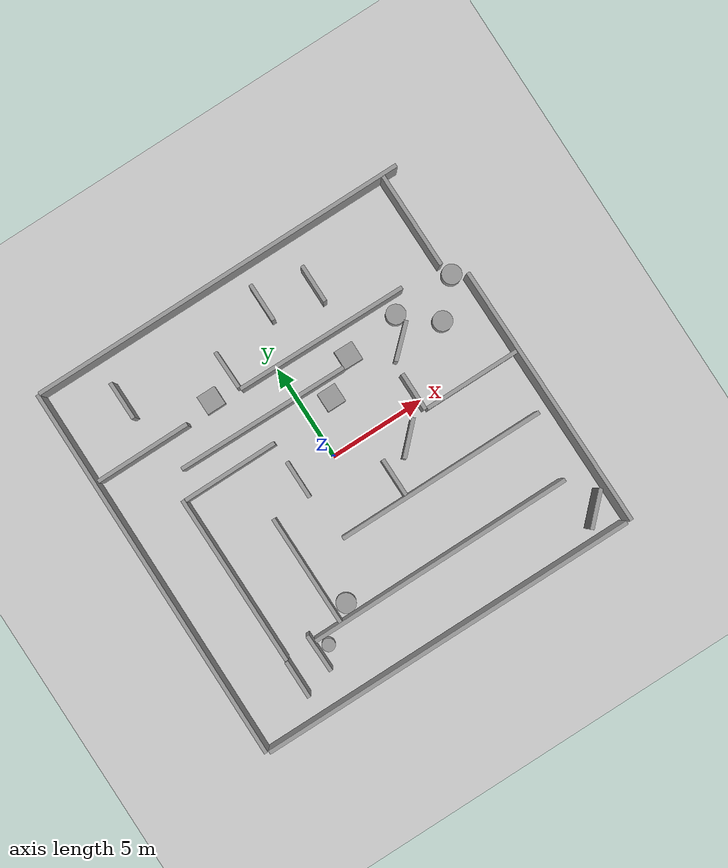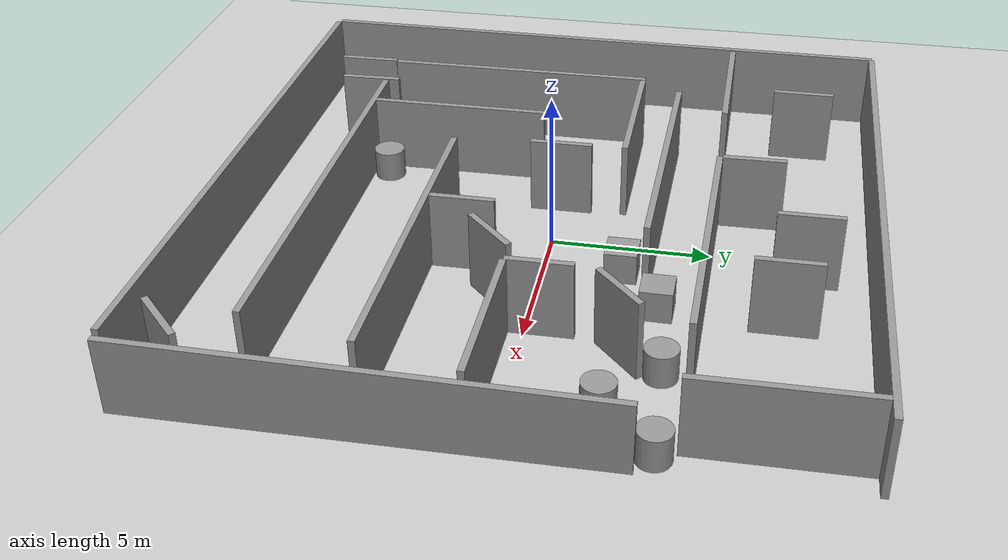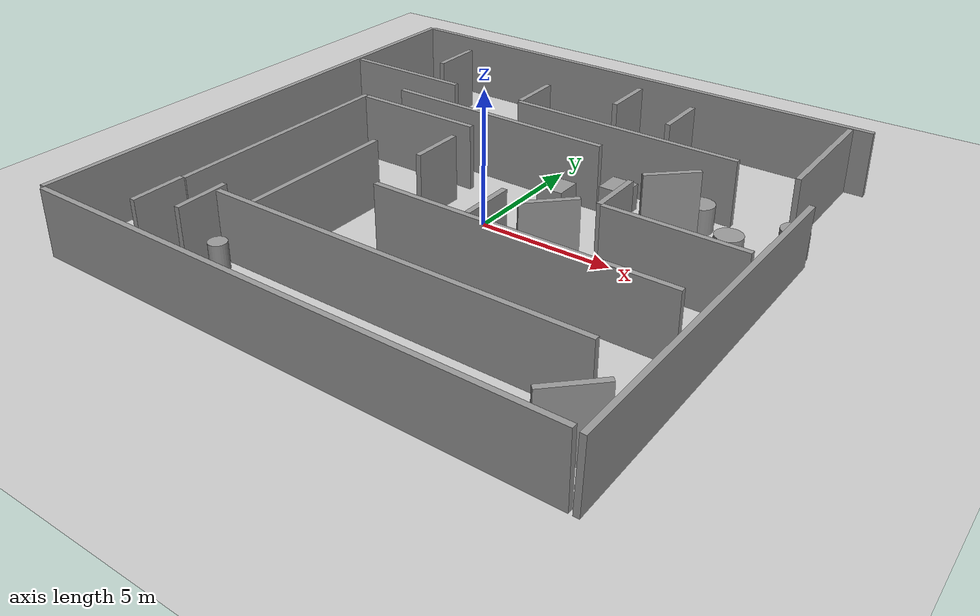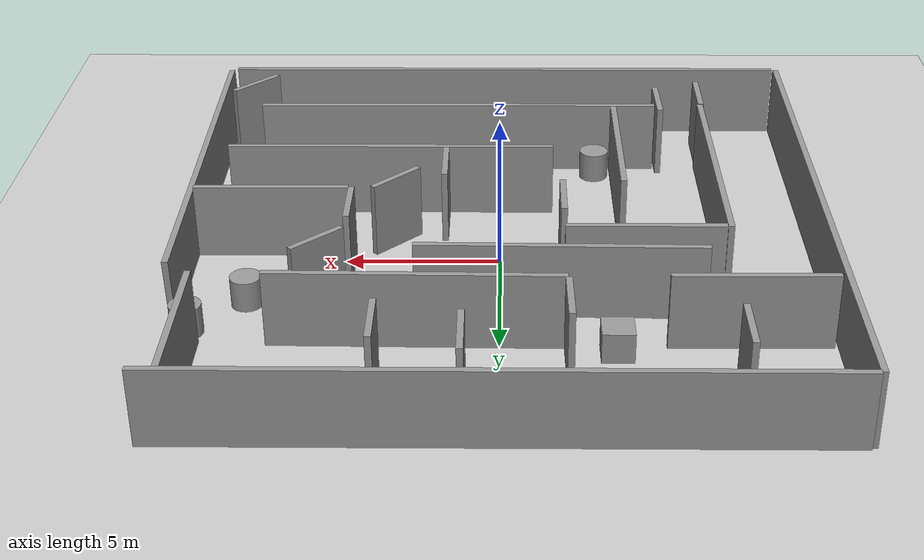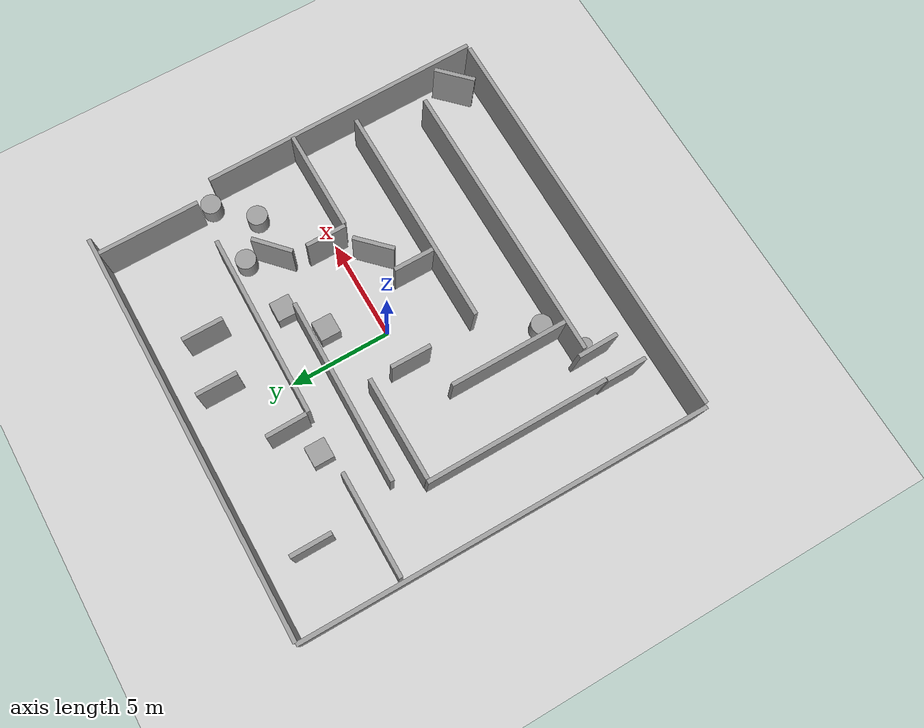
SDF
<sdf version="1.6">
 <world name="maze">
  <physics name="default_physics" default="0" type="ode">
   <ode>
    <solver>
     <type>quick</type>
     <iters>50</iters>
     <sor>1.4</sor>
     <use_dynamic_moi_rescaling>0</use_dynamic_moi_rescaling>
    </solver>
    <constraints>
     <cfm>0</cfm>
     <erp>0.2</erp>
     <contact_max_correcting_vel>100</contact_max_correcting_vel>
     <contact_surface_layer>0</contact_surface_layer>
    </constraints>
   </ode>
   <real_time_update_rate>1000</real_time_update_rate>
   <max_step_size>0.001</max_step_size>
   <real_time_factor>1</real_time_factor>
  </physics>
  <scene><ambient>0.3 0.3 0.3 1</ambient><background>0.7 0.7 0.7 1</background><shadows>1</shadows></scene>
  <light name="sun" type="directional">
   <pose>0 0 100 0 -0 0</pose>
   <diffuse>0.9 0.9 0.9 1</diffuse>
   <specular>0.1 0.1 0.1 1</specular>
   <attenuation>
    <range>1000</range>
    <constant>0.9</constant>
    <linear>0.01</linear>
    <quadratic>0.001</quadratic>
   </attenuation>
   <direction>-0.2 0 -1</direction>
  </light>
  <light name="light_bulb" type="point">
   <cast_shadows>0</cast_shadows>
   <pose>0 0 10 0 -0 0</pose>
   <diffuse>0.5 0.5 0.5 1</diffuse>
   <specular>0 0 0 1</specular>
   <attenuation>
    <range>80</range>
    <constant>0.9</constant>
    <linear>0.01</linear>
    <quadratic>0.001</quadratic>
   </attenuation>
   <direction>0 0 -1</direction>
  </light>
  <model name="ground_plane">
   <static>1</static>
   <link name="link">
    <collision name="collision">
     <geometry><plane><normal>0 0 1</normal><size>100 100</size></plane></geometry>
     <surface><friction><ode><mu>100</mu><mu2>50</mu2></ode></friction></surface>
    </collision>
    <visual name="visual">
     <cast_shadows>0</cast_shadows>
     <geometry><plane><normal>0 0 1</normal><size>100 100</size></plane></geometry>
     <material>
      <script><uri>file://media/materials/scripts/gazebo.material</uri><name>Gazebo/Grey</name></script>
     </material>
    </visual>
   </link>
  </model>
  <model name="Wall_0">
   <pose>-0.218607 -0.058907 1e-05 0 -1e-06 -0.00463</pose>
   <static>1</static>
   <link name="link_Wall_0">
    <pose>-10 -10 0 0 -0 1.5708</pose>
    <collision name="Wall_0_Collision">
     <pose>10 0 1.25 0 -0 0</pose>
     <geometry><box><size>20 0.2 2.5</size></box></geometry>
    </collision>
    <visual name="Wall_0_Visual">
     <pose>10 0 1.25 0 -0 0</pose>
     <geometry><box><size>20 0.2 2.5</size></box></geometry>
     <material>
      <script><uri>file://media/materials/scripts/gazebo.material</uri><name>Gazebo/Grey</name></script>
     </material>
    </visual>
    <inertial>
     <inertia><ixx>1</ixx><ixy>0</ixy><ixz>0</ixz><iyy>1</iyy><iyz>0</iyz><izz>1</izz></inertia>
     <mass>1</mass>
    </inertial>
   </link>
  </model>
  <model name="Wall_1">
   <pose>-0.104222 -0.104441 0.00011 0 -1.2e-05 -0.002511</pose>
   <static>1</static>
   <link name="link_Wall_1">
    <pose>-10 -10 0 0 -0 0</pose>
    <collision name="Wall_1_Collision">
     <pose>10 0 1.25 0 -0 0</pose>
     <geometry><box><size>20 0.2 2.5</size></box></geometry>
    </collision>
    <visual name="Wall_1_Visual">
     <pose>10 0 1.25 0 -0 0</pose>
     <geometry><box><size>20 0.2 2.5</size></box></geometry>
     <material>
      <script><uri>file://media/materials/scripts/gazebo.material</uri><name>Gazebo/Grey</name></script>
     </material>
    </visual>
    <inertial>
     <inertia><ixx>1</ixx><ixy>0</ixy><ixz>0</ixz><iyy>1</iyy><iyz>0</iyz><izz>1</izz></inertia>
     <mass>1</mass>
    </inertial>
   </link>
  </model>
  <model name="Wall_3">
   <pose>-0.12902 -0.058534 0.016871 2.9e-05 -0.00169 -0.003345</pose>
   <static>1</static>
   <link name="link_Wall_3">
    <pose>-10 10 0 0 -0 0</pose>
    <collision name="Wall_3_Collision">
     <pose>10 0 1.25 0 -0 0</pose>
     <geometry><box><size>20 0.2 2.5</size></box></geometry>
    </collision>
    <visual name="Wall_3_Visual">
     <pose>10 0 1.25 0 -0 0</pose>
     <geometry><box><size>20 0.2 2.5</size></box></geometry>
     <material>
      <script><uri>file://media/materials/scripts/gazebo.material</uri><name>Gazebo/Grey</name></script>
     </material>
    </visual>
    <inertial>
     <inertia><ixx>1</ixx><ixy>0</ixy><ixz>0</ixz><iyy>1</iyy><iyz>0</iyz><izz>1</izz></inertia>
     <mass>1</mass>
    </inertial>
   </link>
  </model>
  <model name="Wall_4">
   <pose>-1.48009 0.13557 8.4e-05 -1e-06 -2.3e-05 -0.000265</pose>
   <static>1</static>
   <link name="link_Wall_4">
    <pose>-4 -7 0 0 -0 0</pose>
    <collision name="Wall_4_Collision">
     <pose>7 0 1.25 0 -0 0</pose>
     <geometry><box><size>14 0.2 2.5</size></box></geometry>
    </collision>
    <visual name="Wall_4_Visual">
     <pose>7 0 1.25 0 -0 0</pose>
     <geometry><box><size>14 0.2 2.5</size></box></geometry>
     <material>
      <script><uri>file://media/materials/scripts/gazebo.material</uri><name>Gazebo/Grey</name></script>
     </material>
    </visual>
    <inertial>
     <inertia><ixx>1</ixx><ixy>0</ixy><ixz>0</ixz><iyy>1</iyy><iyz>0</iyz><izz>1</izz></inertia>
     <mass>1</mass>
    </inertial>
   </link>
  </model>
  <model name="Wall_5">
   <pose>-0.126591 0.121857 0.00566 0.00081 1.3e-05 0.00342</pose>
   <static>1</static>
   <link name="link_Wall_5">
    <pose>-7 -7 0 0 -0 1.5708</pose>
    <collision name="Wall_5_Collision">
     <pose>4.5 0 1.25 0 -0 0</pose>
     <geometry><box><size>9 0.2 2.5</size></box></geometry>
    </collision>
    <visual name="Wall_5_Visual">
     <pose>4.5 0 1.25 0 -0 0</pose>
     <geometry><box><size>9 0.2 2.5</size></box></geometry>
     <material>
      <script><uri>file://media/materials/scripts/gazebo.material</uri><name>Gazebo/Grey</name></script>
     </material>
    </visual>
    <inertial>
     <inertia><ixx>1</ixx><ixy>0</ixy><ixz>0</ixz><iyy>1</iyy><iyz>0</iyz><izz>1</izz></inertia>
     <mass>1</mass>
    </inertial>
   </link>
  </model>
  <model name="Wall_6">
   <pose>-0.769612 0.488747 0.000843 -1e-06 -0.000847 -0.001955</pose>
   <static>1</static>
   <link name="link_Wall_6">
    <pose>-1 -4 0 0 -0 0</pose>
    <collision name="Wall_6_Collision">
     <pose>5.5 0 1.25 0 -0 0</pose>
     <geometry><box><size>11 0.2 2.5</size></box></geometry>
    </collision>
    <visual name="Wall_6_Visual">
     <pose>5.5 0 1.25 0 -0 0</pose>
     <geometry><box><size>11 0.2 2.5</size></box></geometry>
     <material>
      <script><uri>file://media/materials/scripts/gazebo.material</uri><name>Gazebo/Grey</name></script>
     </material>
    </visual>
    <inertial>
     <inertia><ixx>1</ixx><ixy>0</ixy><ixz>0</ixz><iyy>1</iyy><iyz>0</iyz><izz>1</izz></inertia>
     <mass>1</mass>
    </inertial>
   </link>
  </model>
  <model name="Wall_7">
   <pose>-0.022562 0.060278 4e-06 0 -1e-06 0.00249</pose>
   <static>1</static>
   <link name="link_Wall_7">
    <pose>-4 -7 0 0 -0 1.5708</pose>
    <collision name="Wall_7_Collision">
     <pose>3 0 1.25 0 -0 0</pose>
     <geometry><box><size>6 0.2 2.5</size></box></geometry>
    </collision>
    <visual name="Wall_7_Visual">
     <pose>3 0 1.25 0 -0 0</pose>
     <geometry><box><size>6 0.2 2.5</size></box></geometry>
     <material>
      <script><uri>file://media/materials/scripts/gazebo.material</uri><name>Gazebo/Grey</name></script>
     </material>
    </visual>
    <inertial>
     <inertia><ixx>1</ixx><ixy>0</ixy><ixz>0</ixz><iyy>1</iyy><iyz>0</iyz><izz>1</izz></inertia>
     <mass>1</mass>
    </inertial>
   </link>
  </model>
  <model name="Wall_9">
   <pose>-0.063693 0.004472 0.005677 1e-06 -0.002841 -0.012727</pose>
   <static>1</static>
   <link name="link_Wall_9">
    <pose>-2 5 0 0 -0 0</pose>
    <collision name="Wall_9_Collision">
     <pose>4.5 0 1.25 0 -0 0</pose>
     <geometry><box><size>9 0.2 2.5</size></box></geometry>
    </collision>
    <visual name="Wall_9_Visual">
     <pose>4.5 0 1.25 0 -0 0</pose>
     <geometry><box><size>9 0.2 2.5</size></box></geometry>
     <material>
      <script><uri>file://media/materials/scripts/gazebo.material</uri><name>Gazebo/Grey</name></script>
     </material>
    </visual>
    <inertial>
     <inertia><ixx>1</ixx><ixy>0</ixy><ixz>0</ixz><iyy>1</iyy><iyz>0</iyz><izz>1</izz></inertia>
     <mass>1</mass>
    </inertial>
   </link>
  </model>
  <model name="Wall_10">
   <pose>0.050082 0.159952 -7e-05 1.4e-05 -0 0.01501</pose>
   <static>1</static>
   <link name="link_Wall_10">
    <pose>-2 5 0 0 -0 1.5708</pose>
    <collision name="Wall_10_Collision">
     <pose>1 0 1.25 0 -0 0</pose>
     <geometry><box><size>2 0.2 2.5</size></box></geometry>
    </collision>
    <visual name="Wall_10_Visual">
     <pose>1 0 1.25 0 -0 0</pose>
     <geometry><box><size>2 0.2 2.5</size></box></geometry>
     <material>
      <script><uri>file://media/materials/scripts/gazebo.material</uri><name>Gazebo/Grey</name></script>
     </material>
    </visual>
    <inertial>
     <inertia><ixx>1</ixx><ixy>0</ixy><ixz>0</ixz><iyy>1</iyy><iyz>0</iyz><izz>1</izz></inertia>
     <mass>1</mass>
    </inertial>
   </link>
  </model>
  <model name="Wall_11">
   <pose>-0.40704 -1.66392 -0.00158 0.000197 -1e-06 3e-05</pose>
   <static>1</static>
   <link name="link_Wall_11">
    <pose>4 8 0 0 -0 1.5708</pose>
    <collision name="Wall_11_Collision">
     <pose>1 0 1.25 0 -0 0</pose>
     <geometry><box><size>2 0.2 2.5</size></box></geometry>
    </collision>
    <visual name="Wall_11_Visual">
     <pose>1 0 1.25 0 -0 0</pose>
     <geometry><box><size>2 0.2 2.5</size></box></geometry>
     <material>
      <script><uri>file://media/materials/scripts/gazebo.material</uri><name>Gazebo/Grey</name></script>
     </material>
    </visual>
    <inertial>
     <inertia><ixx>1</ixx><ixy>0</ixy><ixz>0</ixz><iyy>1</iyy><iyz>0</iyz><izz>1</izz></inertia>
     <mass>1</mass>
    </inertial>
   </link>
  </model>
  <model name="Wall_12">
   <pose>2.13225 2.77812 -0.002935 0.001446 -6e-06 0.00611</pose>
   <static>1</static>
   <link name="link_Wall_12">
    <pose>7 2 0 0 -0 1.5708</pose>
    <collision name="Wall_12_Collision">
     <pose>2.5 0 1.25 0 -0 0</pose>
     <geometry><box><size>5 0.2 2.5</size></box></geometry>
    </collision>
    <visual name="Wall_12_Visual">
     <pose>2.5 0 1.25 0 -0 0</pose>
     <geometry><box><size>5 0.2 2.5</size></box></geometry>
     <material>
      <script><uri>file://media/materials/scripts/gazebo.material</uri><name>Gazebo/Grey</name></script>
     </material>
    </visual>
    <inertial>
     <inertia><ixx>1</ixx><ixy>0</ixy><ixz>0</ixz><iyy>1</iyy><iyz>0</iyz><izz>1</izz></inertia>
     <mass>1</mass>
    </inertial>
   </link>
  </model>
  <model name="Wall_13">
   <pose>0.003714 0.00269 0.00188 0 -0.000188 0.000351</pose>
   <static>1</static>
   <link name="link_Wall_13">
    <pose>-10 5 0 0 -0 0</pose>
    <collision name="Wall_13_Collision">
     <pose>2.5 0 1.25 0 -0 0</pose>
     <geometry><box><size>5 0.2 2.5</size></box></geometry>
    </collision>
    <visual name="Wall_13_Visual">
     <pose>2.5 0 1.25 0 -0 0</pose>
     <geometry><box><size>5 0.2 2.5</size></box></geometry>
     <material>
      <script><uri>file://media/materials/scripts/gazebo.material</uri><name>Gazebo/Grey</name></script>
     </material>
    </visual>
    <inertial>
     <inertia><ixx>1</ixx><ixy>0</ixy><ixz>0</ixz><iyy>1</iyy><iyz>0</iyz><izz>1</izz></inertia>
     <mass>1</mass>
    </inertial>
   </link>
  </model>
  <gravity>0 0 -9.81</gravity>
  <magnetic_field>6e-06 2.3e-05 -4.2e-05</magnetic_field>
  <atmosphere type="adiabatic"/>
  <spherical_coordinates>
   <surface_model>EARTH_WGS84</surface_model>
   <latitude_deg>0</latitude_deg>
   <longitude_deg>0</longitude_deg>
   <elevation>0</elevation>
   <heading_deg>0</heading_deg>
  </spherical_coordinates>
  <model name="Wall_10_clone">
   <link name="link_Wall_10">
    <pose>-2 5 0 0 -0 1.5708</pose>
    <collision name="Wall_10_Collision">
     <pose>1 0 1.25 0 -0 0</pose>
     <geometry><box><size>2 0.2 2.5</size></box></geometry>
    </collision>
    <visual name="Wall_10_Visual">
     <pose>1 0 1.25 0 -0 0</pose>
     <geometry><box><size>2 0.2 2.5</size></box></geometry>
     <material>
      <script><uri>file://media/materials/scripts/gazebo.material</uri><name>Gazebo/Grey</name></script>
     </material>
    </visual>
    <inertial>
     <inertia><ixx>1</ixx><ixy>0</ixy><ixz>0</ixz><iyy>1</iyy><iyz>0</iyz><izz>1</izz></inertia>
     <mass>1</mass>
    </inertial>
   </link>
   <pose>-0.033791 -6.02936 -0.02088 0.004176 0 -0.00091</pose>
  </model>
  <model name="Wall_10_clone_0">
   <link name="link_Wall_10">
    <pose>-2 5 0 0 -0 1.5708</pose>
    <collision name="Wall_10_Collision">
     <pose>1 0 1.25 0 -0 0</pose>
     <geometry><box><size>2 0.2 2.5</size></box></geometry>
    </collision>
    <visual name="Wall_10_Visual">
     <pose>1 0 1.25 0 -0 0</pose>
     <geometry><box><size>2 0.2 2.5</size></box></geometry>
     <material>
      <script><uri>file://media/materials/scripts/gazebo.material</uri><name>Gazebo/Grey</name></script>
     </material>
    </visual>
    <inertial>
     <inertia><ixx>1</ixx><ixy>0</ixy><ixz>0</ixz><iyy>1</iyy><iyz>0</iyz><izz>1</izz></inertia>
     <mass>1</mass>
    </inertial>
   </link>
   <pose>3.84197 -8.40212 -7e-05 1.4e-05 -0 0.00201</pose>
  </model>
  <model name="Wall_13_clone">
   <link name="link_Wall_13">
    <pose>-10 5 0 0 -0 0</pose>
    <collision name="Wall_13_Collision">
     <pose>2.5 0 1.25 0 -0 0</pose>
     <geometry><box><size>5 0.2 2.5</size></box></geometry>
    </collision>
    <visual name="Wall_13_Visual">
     <pose>2.5 0 1.25 0 -0 0</pose>
     <geometry><box><size>5 0.2 2.5</size></box></geometry>
     <material>
      <script><uri>file://media/materials/scripts/gazebo.material</uri><name>Gazebo/Grey</name></script>
     </material>
    </visual>
    <inertial>
     <inertia><ixx>1</ixx><ixy>0</ixy><ixz>0</ixz><iyy>1</iyy><iyz>0</iyz><izz>1</izz></inertia>
     <mass>1</mass>
    </inertial>
   </link>
   <pose>14.8873 -5.53999 0.000192 1e-06 -1.9e-05 -0.001844</pose>
  </model>
  <model name="Wall_10_clone_0_clone">
   <link name="link_Wall_10">
    <pose>-2 5 0 0 -0 1.5708</pose>
    <collision name="Wall_10_Collision">
     <pose>1 0 1.25 0 -0 0</pose>
     <geometry><box><size>2 0.2 2.5</size></box></geometry>
    </collision>
    <visual name="Wall_10_Visual">
     <pose>1 0 1.25 0 -0 0</pose>
     <geometry><box><size>2 0.2 2.5</size></box></geometry>
     <material>
      <script><uri>file://media/materials/scripts/gazebo.material</uri><name>Gazebo/Grey</name></script>
     </material>
    </visual>
    <inertial>
     <inertia><ixx>1</ixx><ixy>0</ixy><ixz>0</ixz><iyy>1</iyy><iyz>0</iyz><izz>1</izz></inertia>
     <mass>1</mass>
    </inertial>
   </link>
   <pose>-4.97087 1.59361 -7e-05 1.4e-05 -0 0.00201</pose>
  </model>
  <model name="Wall_10_clone_0_clone_0">
   <link name="link_Wall_10">
    <pose>-2 5 0 0 -0 1.5708</pose>
    <collision name="Wall_10_Collision">
     <pose>1 0 1.25 0 -0 0</pose>
     <geometry><box><size>2 0.2 2.5</size></box></geometry>
    </collision>
    <visual name="Wall_10_Visual">
     <pose>1 0 1.25 0 -0 0</pose>
     <geometry><box><size>2 0.2 2.5</size></box></geometry>
     <material>
      <script><uri>file://media/materials/scripts/gazebo.material</uri><name>Gazebo/Grey</name></script>
     </material>
    </visual>
    <inertial>
     <inertia><ixx>1</ixx><ixy>0</ixy><ixz>0</ixz><iyy>1</iyy><iyz>0</iyz><izz>1</izz></inertia>
     <mass>1</mass>
    </inertial>
   </link>
   <pose>3.07842 1.91258 -7e-05 1.4e-05 -0 0.00201</pose>
  </model>
  <model name="Wall_10_clone_0_clone_1_clone">
   <link name="link_Wall_10">
    <pose>-2 5 0 0 -0 1.5708</pose>
    <collision name="Wall_10_Collision">
     <pose>1 0 1.25 0 -0 0</pose>
     <geometry><box><size>2 0.2 2.5</size></box></geometry>
    </collision>
    <visual name="Wall_10_Visual">
     <pose>1 0 1.25 0 -0 0</pose>
     <geometry><box><size>2 0.2 2.5</size></box></geometry>
     <material>
      <script><uri>file://media/materials/scripts/gazebo.material</uri><name>Gazebo/Grey</name></script>
     </material>
    </visual>
    <inertial>
     <inertia><ixx>1</ixx><ixy>0</ixy><ixz>0</ixz><iyy>1</iyy><iyz>0</iyz><izz>1</izz></inertia>
     <mass>1</mass>
    </inertial>
   </link>
   <pose>6.17815 -14.4613 -3e-05 6e-06 -0 -0.785923</pose>
  </model>
  <model name="Wall_9_clone">
   <static>1</static>
   <link name="link_Wall_9">
    <pose>-2 5 0 0 -0 0</pose>
    <collision name="Wall_9_Collision">
     <pose>4.5 0 1.25 0 -0 0</pose>
     <geometry><box><size>9 0.2 2.5</size></box></geometry>
    </collision>
    <visual name="Wall_9_Visual">
     <pose>4.5 0 1.25 0 -0 0</pose>
     <geometry><box><size>9 0.2 2.5</size></box></geometry>
     <material>
      <script><uri>file://media/materials/scripts/gazebo.material</uri><name>Gazebo/Grey</name></script>
     </material>
    </visual>
    <inertial>
     <inertia><ixx>1</ixx><ixy>0</ixy><ixz>0</ixz><iyy>1</iyy><iyz>0</iyz><izz>1</izz></inertia>
     <mass>1</mass>
    </inertial>
   </link>
   <pose>-4.42558 -1.67308 0.005677 1e-06 -0.002841 -0.012727</pose>
  </model>
  <model name="unit_cylinder_0">
   <pose>7.86916 2.61469 0.499999 0 -0 0.33432</pose>
   <link name="link">
    <inertial>
     <mass>1</mass>
     <inertia><ixx>0.145833</ixx><ixy>0</ixy><ixz>0</ixz><iyy>0.145833</iyy><iyz>0</iyz><izz>0.125</izz></inertia>
    </inertial>
    <collision name="collision">
     <geometry><cylinder><radius>0.5</radius><length>1</length></cylinder></geometry>
    </collision>
    <visual name="visual">
     <geometry><cylinder><radius>0.5</radius><length>1</length></cylinder></geometry>
     <material>
      <script><name>Gazebo/Grey</name><uri>file://media/materials/scripts/gazebo.material</uri></script>
     </material>
    </visual>
   </link>
  </model>
  <model name="unit_cylinder_0_clone">
   <pose>6.16353 4.0906 0.499999 0 -0 0.295596</pose>
   <link name="link">
    <inertial>
     <mass>1</mass>
     <inertia><ixx>0.145833</ixx><ixy>0</ixy><ixz>0</ixz><iyy>0.145833</iyy><iyz>0</iyz><izz>0.125</izz></inertia>
    </inertial>
    <collision name="collision">
     <geometry><cylinder><radius>0.5</radius><length>1</length></cylinder></geometry>
    </collision>
    <visual name="visual">
     <geometry><cylinder><radius>0.5</radius><length>1</length></cylinder></geometry>
     <material>
      <script><name>Gazebo/Grey</name><uri>file://media/materials/scripts/gazebo.material</uri></script>
     </material>
    </visual>
   </link>
  </model>
  <model name="Wall_4_clone">
   <static>1</static>
   <link name="link_Wall_4">
    <pose>-4 -7 0 0 -0 0</pose>
    <collision name="Wall_4_Collision">
     <pose>7 0 1.25 0 -0 0</pose>
     <geometry><box><size>14 0.2 2.5</size></box></geometry>
    </collision>
    <visual name="Wall_4_Visual">
     <pose>7 0 1.25 0 -0 0</pose>
     <geometry><box><size>14 0.2 2.5</size></box></geometry>
     <material>
      <script><uri>file://media/materials/scripts/gazebo.material</uri><name>Gazebo/Grey</name></script>
     </material>
    </visual>
    <inertial>
     <inertia><ixx>1</ixx><ixy>0</ixy><ixz>0</ixz><iyy>1</iyy><iyz>0</iyz><izz>1</izz></inertia>
     <mass>1</mass>
    </inertial>
   </link>
   <pose>3.0383 -6.2522 8.3e-05 0.020598 0.014993 1.57834</pose>
  </model>
  <model name="unit_cylinder_0_clone_0">
   <pose>9.45149 4.25382 0.499992 0 -2e-06 0</pose>
   <link name="link">
    <inertial>
     <mass>1</mass>
     <inertia><ixx>0.145833</ixx><ixy>0</ixy><ixz>0</ixz><iyy>0.145833</iyy><iyz>0</iyz><izz>0.125</izz></inertia>
    </inertial>
    <collision name="collision">
     <geometry><cylinder><radius>0.5</radius><length>1</length></cylinder></geometry>
    </collision>
    <visual name="visual">
     <geometry><cylinder><radius>0.5</radius><length>1</length></cylinder></geometry>
     <material>
      <script><name>Gazebo/Grey</name><uri>file://media/materials/scripts/gazebo.material</uri></script>
     </material>
    </visual>
   </link>
  </model>
  <model name="unit_box_0">
   <pose>3.18581 3.66876 0.5 0 0 -0.012952</pose>
   <link name="link">
    <inertial>
     <mass>1</mass>
     <inertia>
      <ixx>0.166667</ixx>
      <ixy>0</ixy>
      <ixz>0</ixz>
      <iyy>0.166667</iyy>
      <iyz>0</iyz>
      <izz>0.166667</izz>
     </inertia>
    </inertial>
    <collision name="collision"><geometry><box><size>1 1 1</size></box></geometry></collision>
    <visual name="visual">
     <geometry><box><size>1 1 1</size></box></geometry>
     <material>
      <script><name>Gazebo/Grey</name><uri>file://media/materials/scripts/gazebo.material</uri></script>
     </material>
    </visual>
   </link>
  </model>
  <model name="Wall_13_clone_clone">
   <link name="link_Wall_13">
    <pose>-10 5 0 0 -0 0</pose>
    <collision name="Wall_13_Collision">
     <pose>2.5 0 1.25 0 -0 0</pose>
     <geometry><box><size>5 0.2 2.5</size></box></geometry>
    </collision>
    <visual name="Wall_13_Visual">
     <pose>2.5 0 1.25 0 -0 0</pose>
     <geometry><box><size>5 0.2 2.5</size></box></geometry>
     <material>
      <script><uri>file://media/materials/scripts/gazebo.material</uri><name>Gazebo/Grey</name></script>
     </material>
    </visual>
    <inertial>
     <inertia><ixx>1</ixx><ixy>0</ixy><ixz>0</ixz><iyy>1</iyy><iyz>0</iyz><izz>1</izz></inertia>
     <mass>1</mass>
    </inertial>
   </link>
   <pose>2.97811 -2.98374 0.005577 1e-06 -0.000558 4.9e-05</pose>
  </model>
  <model name="Wall_10_clone_clone">
   <link name="link_Wall_10">
    <pose>-2 5 0 0 -0 1.5708</pose>
    <collision name="Wall_10_Collision">
     <pose>1 0 1.25 0 -0 0</pose>
     <geometry><box><size>2 0.2 2.5</size></box></geometry>
    </collision>
    <visual name="Wall_10_Visual">
     <pose>1 0 1.25 0 -0 0</pose>
     <geometry><box><size>2 0.2 2.5</size></box></geometry>
     <material>
      <script><uri>file://media/materials/scripts/gazebo.material</uri><name>Gazebo/Grey</name></script>
     </material>
    </visual>
    <inertial>
     <inertia><ixx>1</ixx><ixy>0</ixy><ixz>0</ixz><iyy>1</iyy><iyz>0</iyz><izz>1</izz></inertia>
     <mass>1</mass>
    </inertial>
   </link>
   <pose>6.79812 -5.50076 -0.025307 0.005062 -0 0.00034</pose>
  </model>
  <model name="unit_box_1">
   <pose>1.41138 2.41471 0.5 0 0 -4e-06</pose>
   <link name="link">
    <inertial>
     <mass>1</mass>
     <inertia>
      <ixx>0.166667</ixx>
      <ixy>0</ixy>
      <ixz>0</ixz>
      <iyy>0.166667</iyy>
      <iyz>0</iyz>
      <izz>0.166667</izz>
     </inertia>
    </inertial>
    <collision name="collision"><geometry><box><size>1 1 1</size></box></geometry></collision>
    <visual name="visual">
     <geometry><box><size>1 1 1</size></box></geometry>
     <material>
      <script><name>Gazebo/Grey</name><uri>file://media/materials/scripts/gazebo.material</uri></script>
     </material>
    </visual>
   </link>
  </model>
  <model name="Wall_10_clone_0_clone_1_clone_clone">
   <link name="link_Wall_10">
    <pose>-2 5 0 0 -0 1.5708</pose>
    <collision name="Wall_10_Collision">
     <pose>1 0 1.25 0 -0 0</pose>
     <geometry><box><size>2 0.2 2.5</size></box></geometry>
    </collision>
    <visual name="Wall_10_Visual">
     <pose>1 0 1.25 0 -0 0</pose>
     <geometry><box><size>2 0.2 2.5</size></box></geometry>
     <material>
      <script><uri>file://media/materials/scripts/gazebo.material</uri><name>Gazebo/Grey</name></script>
     </material>
    </visual>
    <inertial>
     <inertia><ixx>1</ixx><ixy>0</ixy><ixz>0</ixz><iyy>1</iyy><iyz>0</iyz><izz>1</izz></inertia>
     <mass>1</mass>
    </inertial>
   </link>
   <pose>0.578192 -6.88263 -3e-05 6e-06 -0 -0.785923</pose>
  </model>
  <model name="Wall_10_clone_clone_0">
   <link name="link_Wall_10">
    <pose>-2 5 0 0 -0 1.5708</pose>
    <collision name="Wall_10_Collision">
     <pose>1 0 1.25 0 -0 0</pose>
     <geometry><box><size>2 0.2 2.5</size></box></geometry>
    </collision>
    <visual name="Wall_10_Visual">
     <pose>1 0 1.25 0 -0 0</pose>
     <geometry><box><size>2 0.2 2.5</size></box></geometry>
     <material>
      <script><uri>file://media/materials/scripts/gazebo.material</uri><name>Gazebo/Grey</name></script>
     </material>
    </visual>
    <inertial>
     <inertia><ixx>1</ixx><ixy>0</ixy><ixz>0</ixz><iyy>1</iyy><iyz>0</iyz><izz>1</izz></inertia>
     <mass>1</mass>
    </inertial>
   </link>
   <pose>-3.51541 -13.3797 -0.030305 0.006061 -0 0.02019</pose>
  </model>
  <model name="Wall_10_clone_clone_1">
   <link name="link_Wall_10">
    <pose>-2 5 0 0 -0 1.5708</pose>
    <collision name="Wall_10_Collision">
     <pose>1 0 1.25 0 -0 0</pose>
     <geometry><box><size>2 0.2 2.5</size></box></geometry>
    </collision>
    <visual name="Wall_10_Visual">
     <pose>1 0 1.25 0 -0 0</pose>
     <geometry><box><size>2 0.2 2.5</size></box></geometry>
     <material>
      <script><uri>file://media/materials/scripts/gazebo.material</uri><name>Gazebo/Grey</name></script>
     </material>
    </visual>
    <inertial>
     <inertia><ixx>1</ixx><ixy>0</ixy><ixz>0</ixz><iyy>1</iyy><iyz>0</iyz><izz>1</izz></inertia>
     <mass>1</mass>
    </inertial>
   </link>
   <pose>-5.14787 -13.9022 -0.04226 0.008452 -0 2e-05</pose>
  </model>
  <light name="sun_0" type="directional">
   <pose>-7.1448 -9.21763 10 0 -0 0</pose>
   <diffuse>0.8 0.8 0.8 1</diffuse>
   <specular>0.1 0.1 0.1 1</specular>
   <attenuation>
    <range>1000</range>
    <constant>0.9</constant>
    <linear>0.01</linear>
    <quadratic>0.001</quadratic>
   </attenuation>
   <direction>-0.5 0.5 -1</direction>
  </light>
  <model name="Wall_10_clone_0_clone_1_clone_clone_clone">
   <link name="link_Wall_10">
    <pose>-2 5 0 0 -0 1.5708</pose>
    <collision name="Wall_10_Collision">
     <pose>1 0 1.25 0 -0 0</pose>
     <geometry><box><size>2 0.2 2.5</size></box></geometry>
    </collision>
    <visual name="Wall_10_Visual">
     <pose>1 0 1.25 0 -0 0</pose>
     <geometry><box><size>2 0.2 2.5</size></box></geometry>
     <material>
      <script><uri>file://media/materials/scripts/gazebo.material</uri><name>Gazebo/Grey</name></script>
     </material>
    </visual>
    <inertial>
     <inertia><ixx>1</ixx><ixy>0</ixy><ixz>0</ixz><iyy>1</iyy><iyz>0</iyz><izz>1</izz></inertia>
     <mass>1</mass>
    </inertial>
   </link>
   <pose>2.59061 -2.72967 -0.024671 0.004934 1e-06 -0.818191</pose>
  </model>
  <model name="unit_box_3">
   <pose>-3.48877 5.41852 0.5 0 -0 0</pose>
   <link name="link">
    <inertial>
     <mass>1</mass>
     <inertia>
      <ixx>0.166667</ixx>
      <ixy>0</ixy>
      <ixz>0</ixz>
      <iyy>0.166667</iyy>
      <iyz>0</iyz>
      <izz>0.166667</izz>
     </inertia>
    </inertial>
    <collision name="collision"><geometry><box><size>1 1 1</size></box></geometry></collision>
    <visual name="visual">
     <geometry><box><size>1 1 1</size></box></geometry>
     <material>
      <script><name>Gazebo/Grey</name><uri>file://media/materials/scripts/gazebo.material</uri></script>
     </material>
    </visual>
   </link>
  </model>
  <model name="unit_cylinder_1">
   <pose>-3.32637 -6.21633 0.5 0 -0 0</pose>
   <link name="link">
    <inertial>
     <mass>1</mass>
     <inertia><ixx>0.145833</ixx><ixy>0</ixy><ixz>0</ixz><iyy>0.145833</iyy><iyz>0</iyz><izz>0.125</izz></inertia>
    </inertial>
    <collision name="collision">
     <geometry><cylinder><radius>0.5</radius><length>1</length></cylinder></geometry>
    </collision>
    <visual name="visual">
     <geometry><cylinder><radius>0.5</radius><length>1</length></cylinder></geometry>
     <material>
      <script><name>Gazebo/Grey</name><uri>file://media/materials/scripts/gazebo.material</uri></script>
     </material>
    </visual>
   </link>
  </model>
  <light name="user_spot_light_0" type="spot">
   <pose>-8.34033 11.1554 1 0 -0 0</pose>
   <diffuse>0.5 0.5 0.5 1</diffuse>
   <specular>0.1 0.1 0.1 1</specular>
   <direction>0 0 -1</direction>
   <attenuation>
    <range>20</range>
    <constant>0.5</constant>
    <linear>0.01</linear>
    <quadratic>0.001</quadratic>
   </attenuation>
   <cast_shadows>0</cast_shadows>
   <spot><inner_angle>0.6</inner_angle><outer_angle>1</outer_angle><falloff>1</falloff></spot>
  </light>
  <light name="user_spot_light_1" type="spot">
   <pose>-10.3094 -4.35957 1 0 -0 0</pose>
   <diffuse>0.5 0.5 0.5 1</diffuse>
   <specular>0.1 0.1 0.1 1</specular>
   <direction>0 0 -1</direction>
   <attenuation>
    <range>20</range>
    <constant>0.5</constant>
    <linear>0.01</linear>
    <quadratic>0.001</quadratic>
   </attenuation>
   <cast_shadows>0</cast_shadows>
   <spot><inner_angle>0.6</inner_angle><outer_angle>1</outer_angle><falloff>1</falloff></spot>
  </light>
  <model name="unit_cylinder_2">
   <pose>-5.10925 -7.43394 0.5 0 0 -1e-06</pose>
   <link name="link">
    <inertial>
     <mass>1</mass>
     <inertia><ixx>0.145833</ixx><ixy>0</ixy><ixz>0</ixz><iyy>0.145833</iyy><iyz>0</iyz><izz>0.125</izz></inertia>
    </inertial>
    <collision name="collision">
     <geometry><cylinder><radius>0.333924</radius><length>1</length></cylinder></geometry>
    </collision>
    <visual name="visual">
     <geometry><cylinder><radius>0.333924</radius><length>1</length></cylinder></geometry>
     <material>
      <script><name>Gazebo/Grey</name><uri>file://media/materials/scripts/gazebo.material</uri></script>
     </material>
    </visual>
   </link>
  </model>
 </world>
</sdf>
